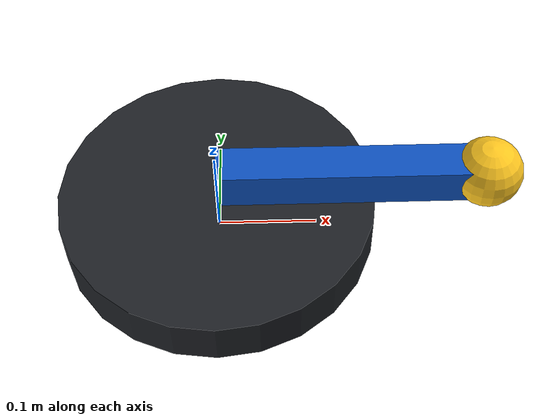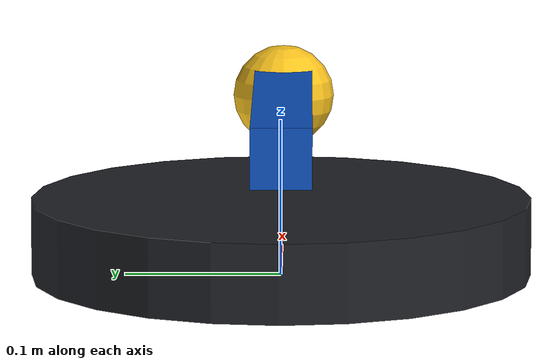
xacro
<?xml version="1.0"?>
<robot name="canhat_one_motor" xmlns:xacro="http://www.ros.org/wiki/xacro">
  <material name="base_dark">
    <color rgba="0.12 0.13 0.15 1.0"/>
  </material>
  <material name="motor_blue">
    <color rgba="0.05 0.32 0.75 1.0"/>
  </material>
  <material name="marker_yellow">
    <color rgba="1.0 0.78 0.12 1.0"/>
  </material>

  <link name="base_link">
    <visual>
      <origin xyz="0 0 0.025" rpy="0 0 0"/>
      <geometry>
        <cylinder radius="0.16" length="0.05"/>
      </geometry>
      <material name="base_dark"/>
    </visual>
    <collision>
      <origin xyz="0 0 0.025" rpy="0 0 0"/>
      <geometry>
        <cylinder radius="0.16" length="0.05"/>
      </geometry>
    </collision>
    <inertial>
      <mass value="1.0"/>
      <origin xyz="0 0 0.025" rpy="0 0 0"/>
      <inertia ixx="0.005" ixy="0" ixz="0" iyy="0.005" iyz="0" izz="0.005"/>
    </inertial>
  </link>

  <joint name="revolute_7_0" type="continuous">
    <parent link="base_link"/>
    <child link="rotor_link"/>
    <origin xyz="0 0 0.075" rpy="0 0 0"/>
    <axis xyz="0 0 1"/>
  </joint>

  <link name="rotor_link">
    <visual>
      <origin xyz="0.13 0 0" rpy="0 0 0"/>
      <geometry>
        <box size="0.26 0.04 0.04"/>
      </geometry>
      <material name="motor_blue"/>
    </visual>
    <visual>
      <origin xyz="0.27 0 0" rpy="0 0 0"/>
      <geometry>
        <sphere radius="0.035"/>
      </geometry>
      <material name="marker_yellow"/>
    </visual>
    <collision>
      <origin xyz="0.13 0 0" rpy="0 0 0"/>
      <geometry>
        <box size="0.26 0.04 0.04"/>
      </geometry>
    </collision>
    <inertial>
      <mass value="0.25"/>
      <origin xyz="0.13 0 0" rpy="0 0 0"/>
      <inertia ixx="0.001" ixy="0" ixz="0" iyy="0.003" iyz="0" izz="0.003"/>
    </inertial>
  </link>
</robot>
